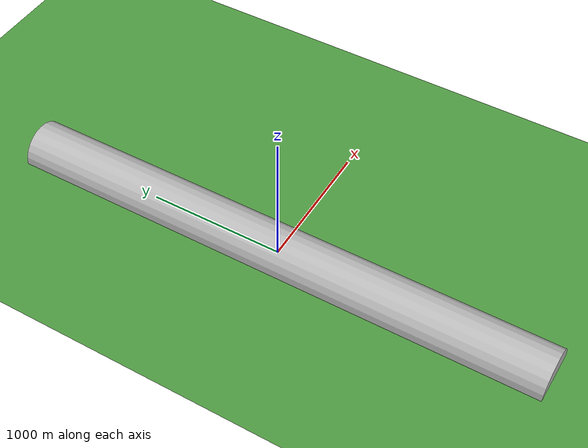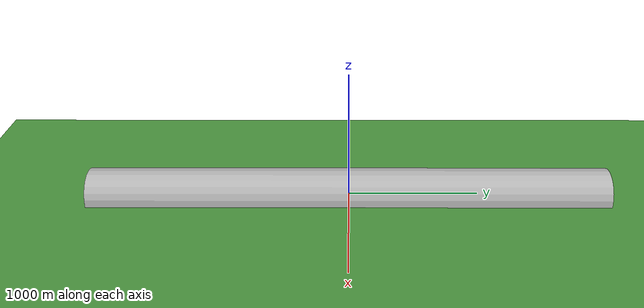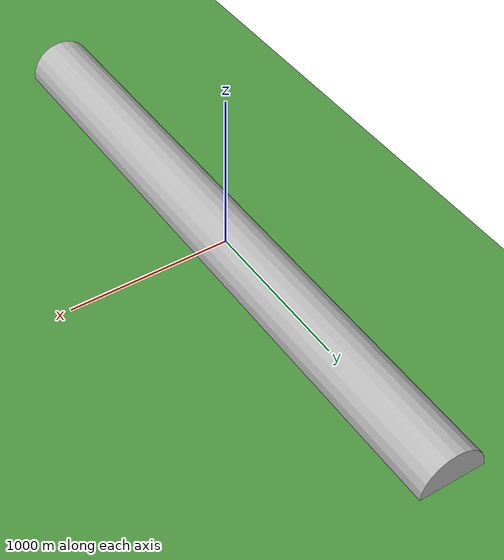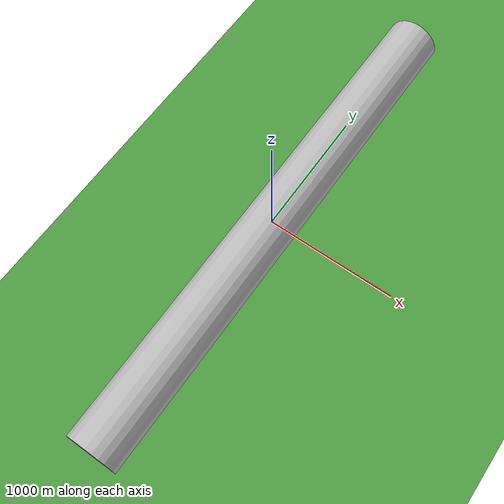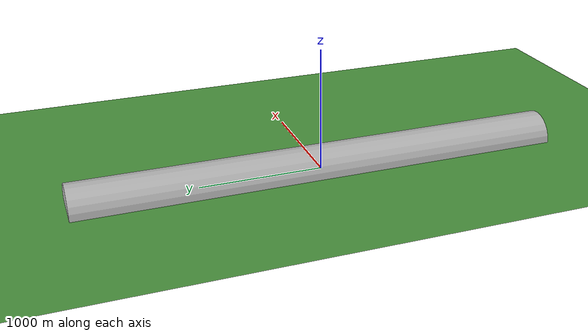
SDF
<?xml version="1.0" ?>
<sdf version="1.4">
  <world name="cylinder">

    <include>
      <uri>model://cylinder</uri>
    </include>

    <gui>
      <camera name="user_camera">
        <pose>-1992.00000 -1995.000000 1.500000 0.000000 0.143643 0.8854</pose>
      </camera>
      <plugin name="view_selection" filename="librotors_gazebo_view_control_plugin.so"/>   <!-- Little camera GUI in Gazebo -->
    </gui>

    <physics type='ode'>
      <ode>
        <solver>
          <type>quick</type>
          <iters>1000</iters>
          <sor>1.3</sor>
        </solver>
        <constraints>
          <cfm>0</cfm>
          <erp>0.2</erp>
          <contact_max_correcting_vel>100</contact_max_correcting_vel>
          <contact_surface_layer>0.001</contact_surface_layer>
        </constraints>
      </ode>
      <max_step_size>0.01</max_step_size>
      <real_time_factor>1</real_time_factor>
      <real_time_update_rate>100</real_time_update_rate>
      <gravity>0 0 -9.81</gravity>
    </physics>

    <scene>
      <ambient>0.2 0.2 0.2 1.0</ambient>
      <background>0.2 0.2 0.2 1.0</background>
      <grid>false</grid>
      <sky>
        <clouds>
          <speed>-4</speed>
        </clouds>
      </sky>
      <shadows>0</shadows>
    </scene>

    <light type="directional" name="sun">
      <cast_shadows>false</cast_shadows>
      <pose>0 0 300 0 0 0</pose>
      <diffuse>0.8 0.8 0.8 1</diffuse>
      <specular>0.0 0.0 0.0 1</specular>
      <attenuation>
        <range>1000</range>
        <constant>0.9</constant>
        <linear>0.01</linear>
        <quadratic>0.001</quadratic>
      </attenuation>
      <direction>0.2 0.2 -0.9</direction>
    </light>

    <model name="ground_plane">
      <static>true</static>
      <link name="link">
        <collision name="collision">
          <pose>0 0 0 0 0 0</pose>
          <geometry>
            <plane>
              <normal>0 0 1</normal>
              <size>4000 4000</size>
            </plane>
          </geometry>
          <surface>
            <friction>
              <ode>
                <mu>0.2</mu>
                <mu2>0.2</mu2>
              </ode>
            </friction>
          </surface>
        </collision>
        <visual name='visual_1'>
          <pose>0 0 0 0 0 0</pose>
          <cast_shadows>false</cast_shadows>
          <geometry>
            <plane>
              <normal>0 0 1</normal>
              <size>4000 4000</size>
            </plane>
          </geometry>
          <material>
            <script>
              <uri>model://grass_plane/materials/scripts</uri>
              <uri>model://grass_plane/materials/textures</uri>
              <name>vrc/grass</name>
            </script>
          </material>
        </visual>
      </link>
    </model>

  </world>
</sdf>

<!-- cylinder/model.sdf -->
<sdf version="1.4">
  <model name="cylinder">
    <static>true</static>
    <link name="link">
      <collision name="collision">
        <pose>0 0 0 1.5707 0 0</pose>
        <geometry>
          <cylinder>
            <radius>200</radius>
            <length>4000</length>
          </cylinder>
        </geometry>
        <surface>
          <friction>
            <ode>
              <mu>0.2</mu>
              <mu2>.2</mu2>
            </ode>
          </friction>
        </surface>
      </collision>
      <visual name="visual">
        <pose>0 0 0 1.5707 0 0</pose>
        <geometry>
          <cylinder>
            <radius>200</radius>
            <length>4000</length>
          </cylinder>
        </geometry>
      </visual>
    </link>
  </model>
</sdf>
